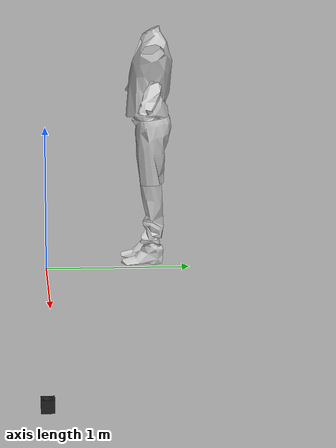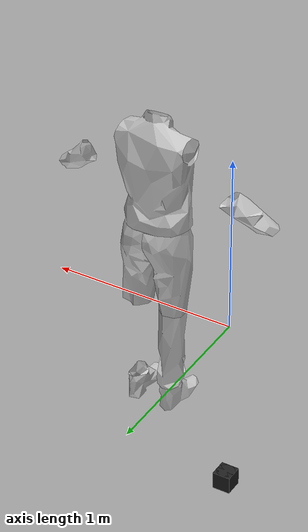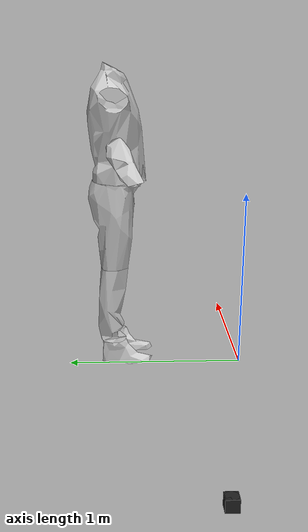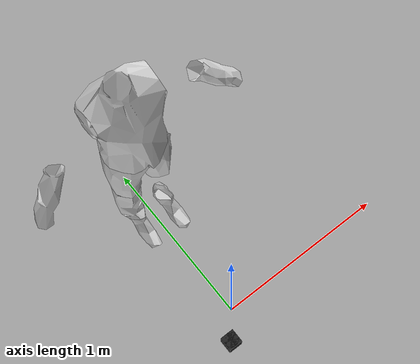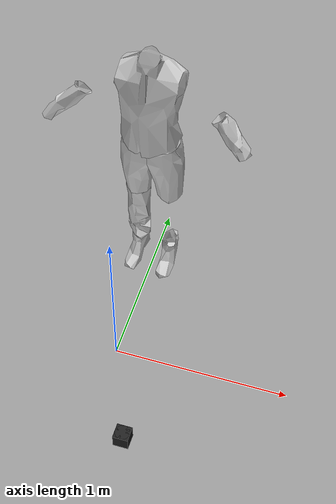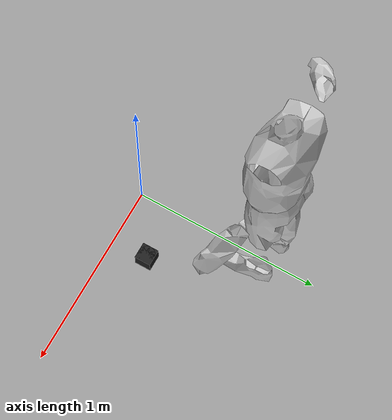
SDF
<sdf version="1.6">
 <world name="default">
  <light name="sun" type="directional">
   <pose>7.485 -12.379 17.2198 0 -0 0</pose>
   <diffuse>0.7 0.7 0.7 1</diffuse>
   <specular>0.2 0.2 0.2 1</specular>
   <direction>-0.1698 0.1 -0.3</direction>
   <attenuation>
    <range>1000</range>
    <constant>0.9</constant>
    <linear>0.01</linear>
    <quadratic>0.001</quadratic>
   </attenuation>
  </light>
  <gravity>0 0 -9.8</gravity>
  <magnetic_field>6e-06 2.3e-05 -4.2e-05</magnetic_field>
  <atmosphere type="adiabatic"/>
  <physics name="default_physics" default="0" type="ode">
   <max_step_size>0.001</max_step_size>
   <real_time_factor>1</real_time_factor>
   <real_time_update_rate>1000</real_time_update_rate>
  </physics>
  <scene><ambient>0.4 0.4 0.4 1</ambient><background>0.7 0.7 0.7 1</background><shadows>1</shadows></scene>
  <audio><device>default</device></audio>
  <spherical_coordinates>
   <surface_model>EARTH_WGS84</surface_model>
   <latitude_deg>0</latitude_deg>
   <longitude_deg>0</longitude_deg>
   <elevation>0</elevation>
   <heading_deg>0</heading_deg>
  </spherical_coordinates>
  <model name="eric_calfR_0">
   <pose>0 0.731628 0.053475 0 -0 0</pose>
   <static>1</static>
   <visible>0</visible>
   <link name="body">
    <visual name="visual"><geometry><mesh><uri>model://eric/eric_calfR.dae</uri></mesh></geometry></visual>
   </link>
  </model>
  <model name="eric_footL_0">
   <pose>0 0.731628 0.053475 0 -0 0</pose>
   <static>1</static>
   <visible>0</visible>
   <link name="body">
    <visual name="visual"><geometry><mesh><uri>model://eric/eric_footL.dae</uri></mesh></geometry></visual>
   </link>
  </model>
  <model name="eric_footR_0">
   <pose>0 0.731628 0.053475 0 -0 0</pose>
   <static>1</static>
   <visible>0</visible>
   <link name="body">
    <visual name="visual"><geometry><mesh><uri>model://eric/eric_footR.dae</uri></mesh></geometry></visual>
   </link>
  </model>
  <model name="eric_forearmL_0">
   <pose>0 0.731628 0.053475 0 -0 0</pose>
   <static>1</static>
   <visible>0</visible>
   <link name="body">
    <visual name="visual"><geometry><mesh><uri>model://eric/eric_forearmL.dae</uri></mesh></geometry></visual>
   </link>
  </model>
  <model name="eric_forearmR_0">
   <pose>0 0.731628 0.053475 0 -0 0</pose>
   <static>1</static>
   <visible>0</visible>
   <link name="body">
    <visual name="visual"><geometry><mesh><uri>model://eric/eric_forearmR.dae</uri></mesh></geometry></visual>
   </link>
  </model>
  <model name="eric_legL_0">
   <pose>0 0.731628 0.053475 0 -0 0</pose>
   <static>1</static>
   <visible>0</visible>
   <link name="body">
    <visual name="visual"><geometry><mesh><uri>model://eric/eric_legL.dae</uri></mesh></geometry></visual>
   </link>
  </model>
  <model name="eric_legR_0">
   <pose>0 0.731628 0.053475 0 -0 0</pose>
   <static>1</static>
   <visible>0</visible>
   <link name="body">
    <visual name="visual"><geometry><mesh><uri>model://eric/eric_legR.dae</uri></mesh></geometry></visual>
   </link>
  </model>
  <model name="eric_torso_0">
   <pose>0 0.731628 0.053475 0 -0 0</pose>
   <static>1</static>
   <visible>0</visible>
   <link name="body">
    <visual name="visual"><geometry><mesh><uri>model://eric/eric_torso.dae</uri></mesh></geometry></visual>
   </link>
  </model>
  <model name="camera_00">
   <link name="eye_vision_camera">
    <sensor name="camera" type="camera">
     <topic>/robot/camera</topic>
     <camera name="__default__">
      <horizontal_fov>1.57</horizontal_fov>
      <image><width>512</width><height>512</height></image>
      <clip><near>0.1</near><far>100</far></clip>
     </camera>
     <always_on>1</always_on>
     <update_rate>30.0</update_rate>
     <visualize>1</visualize>
     <plugin name="mouse_right_eye" filename="libgazebo_ros_camera.so">
      <alwaysOn>1</alwaysOn>
      <cameraName>robot</cameraName>
      <imageTopicName>camera_rgb_00</imageTopicName>
      <cameraInfoTopicName>camera_rgb_info</cameraInfoTopicName>
      <frameName>camera_link</frameName>
      <hackBaseline>0.07</hackBaseline>
      <distortionK1>0.0</distortionK1>
      <distortionK2>0.0</distortionK2>
      <distortionK3>0.0</distortionK3>
      <distortionT1>0.0</distortionT1>
      <distortionT2>0.0</distortionT2>
     </plugin>
     <update_rate>60.0</update_rate>
     <plugin name="camera_controller" filename="libgazebo_dvs_plugin.so">
      <cameraName>camera_dvs_00</cameraName>
      <robotNamespace>robot</robotNamespace>
      <eventThreshold>50</eventThreshold>
      <cameraInfoTopicName>camera_info</cameraInfoTopicName>
     </plugin>
    </sensor>
    <gravity>0</gravity>
    <inertial>
     <inertia><ixx>1</ixx><ixy>0</ixy><ixz>0</ixz><iyy>1</iyy><iyz>0</iyz><izz>1</izz></inertia>
     <mass>1</mass>
    </inertial>
   </link>
  </model>
  <model name="box_0">
   <pose>0 0 -1 0 0 0 0</pose>
   <static>1</static>
   <link name="link">
    <inertial>
     <mass>1</mass>
     <pose>0 0 -1 0 0 0 0</pose>
     <inertia><ixx>1</ixx><ixy>0</ixy><ixz>0</ixz><iyy>1</iyy><iyz>0</iyz><izz>1</izz></inertia>
    </inertial>
    <collision name="collision"><geometry><box><size>0.1 0.1 0.1</size></box></geometry></collision>
    <visual name="visual">
     <geometry><box><size>0.1 0.1 0.1</size></box></geometry>
     <material>
      <script><uri>file://media/materials/scripts/gazebo.material</uri><name>Gazebo/Black</name></script>
     </material>
    </visual>
   </link>
  </model>
  <model name="box_1">
   <pose>0 0 -1 0 0 0 0</pose>
   <static>1</static>
   <link name="link">
    <inertial>
     <mass>1</mass>
     <pose>0 0 -1 0 0 0 0</pose>
     <inertia><ixx>1</ixx><ixy>0</ixy><ixz>0</ixz><iyy>1</iyy><iyz>0</iyz><izz>1</izz></inertia>
    </inertial>
    <collision name="collision"><geometry><box><size>0.1 0.1 0.1</size></box></geometry></collision>
    <visual name="visual">
     <geometry><box><size>0.1 0.1 0.1</size></box></geometry>
     <material>
      <script><uri>file://media/materials/scripts/gazebo.material</uri><name>Gazebo/Green</name></script>
     </material>
    </visual>
   </link>
  </model>
  <model name="box_2">
   <pose>0 0 -1 0 0 0 0</pose>
   <static>1</static>
   <link name="link">
    <inertial>
     <mass>1</mass>
     <pose>0 0 -1 0 0 0 0</pose>
     <inertia><ixx>1</ixx><ixy>0</ixy><ixz>0</ixz><iyy>1</iyy><iyz>0</iyz><izz>1</izz></inertia>
    </inertial>
    <collision name="collision"><geometry><box><size>0.1 0.1 0.1</size></box></geometry></collision>
    <visual name="visual">
     <geometry><box><size>0.1 0.1 0.1</size></box></geometry>
     <material>
      <script><uri>file://media/materials/scripts/gazebo.material</uri><name>Gazebo/Grey</name></script>
     </material>
    </visual>
   </link>
  </model>
  <model name="box_3">
   <pose>0 0 -1 0 0 0 0</pose>
   <static>1</static>
   <link name="link">
    <inertial>
     <mass>1</mass>
     <pose>0 0 -1 0 0 0 0</pose>
     <inertia><ixx>1</ixx><ixy>0</ixy><ixz>0</ixz><iyy>1</iyy><iyz>0</iyz><izz>1</izz></inertia>
    </inertial>
    <collision name="collision"><geometry><box><size>0.1 0.1 0.1</size></box></geometry></collision>
    <visual name="visual">
     <geometry><box><size>0.1 0.1 0.1</size></box></geometry>
     <material>
      <script><uri>file://media/materials/scripts/gazebo.material</uri><name>Gazebo/Blue</name></script>
     </material>
    </visual>
   </link>
  </model>
  <model name="box_4">
   <pose>0 0 -1 0 0 0 0</pose>
   <static>1</static>
   <link name="link">
    <inertial>
     <mass>1</mass>
     <pose>0 0 -1 0 0 0 0</pose>
     <inertia><ixx>1</ixx><ixy>0</ixy><ixz>0</ixz><iyy>1</iyy><iyz>0</iyz><izz>1</izz></inertia>
    </inertial>
    <collision name="collision"><geometry><box><size>0.1 0.1 0.1</size></box></geometry></collision>
    <visual name="visual">
     <geometry><box><size>0.1 0.1 0.1</size></box></geometry>
     <material>
      <script><uri>file://media/materials/scripts/gazebo.material</uri><name>Gazebo/Red</name></script>
     </material>
    </visual>
   </link>
  </model>
  <model name="cylinder_0">
   <pose>0 0 -1 0 0 0 0</pose>
   <static>1</static>
   <link name="link">
    <inertial>
     <mass>1</mass>
     <pose>0 0 -1 0 0 0 0</pose>
     <inertia><ixx>1</ixx><ixy>0</ixy><ixz>0</ixz><iyy>1</iyy><iyz>0</iyz><izz>1</izz></inertia>
    </inertial>
    <collision name="collision">
     <geometry><cylinder><radius>0.05</radius><length>0.1</length></cylinder></geometry>
    </collision>
    <visual name="visual">
     <geometry><cylinder><radius>0.05</radius><length>0.1</length></cylinder></geometry>
     <material>
      <script><uri>file://media/materials/scripts/gazebo.material</uri><name>Gazebo/Black</name></script>
     </material>
    </visual>
   </link>
  </model>
  <model name="cylinder_1">
   <pose>0 0 -1 0 0 0 0</pose>
   <static>1</static>
   <link name="link">
    <inertial>
     <mass>1</mass>
     <pose>0 0 -1 0 0 0 0</pose>
     <inertia><ixx>1</ixx><ixy>0</ixy><ixz>0</ixz><iyy>1</iyy><iyz>0</iyz><izz>1</izz></inertia>
    </inertial>
    <collision name="collision">
     <geometry><cylinder><radius>0.05</radius><length>0.1</length></cylinder></geometry>
    </collision>
    <visual name="visual">
     <geometry><cylinder><radius>0.05</radius><length>0.1</length></cylinder></geometry>
     <material>
      <script><uri>file://media/materials/scripts/gazebo.material</uri><name>Gazebo/Green</name></script>
     </material>
    </visual>
   </link>
  </model>
  <model name="cylinder_2">
   <pose>0 0 -1 0 0 0 0</pose>
   <static>1</static>
   <link name="link">
    <inertial>
     <mass>1</mass>
     <pose>0 0 -1 0 0 0 0</pose>
     <inertia><ixx>1</ixx><ixy>0</ixy><ixz>0</ixz><iyy>1</iyy><iyz>0</iyz><izz>1</izz></inertia>
    </inertial>
    <collision name="collision">
     <geometry><cylinder><radius>0.05</radius><length>0.1</length></cylinder></geometry>
    </collision>
    <visual name="visual">
     <geometry><cylinder><radius>0.05</radius><length>0.1</length></cylinder></geometry>
     <material>
      <script><uri>file://media/materials/scripts/gazebo.material</uri><name>Gazebo/Grey</name></script>
     </material>
    </visual>
   </link>
  </model>
  <model name="cylinder_3">
   <pose>0 0 -1 0 0 0 0</pose>
   <static>1</static>
   <link name="link">
    <inertial>
     <mass>1</mass>
     <pose>0 0 -1 0 0 0 0</pose>
     <inertia><ixx>1</ixx><ixy>0</ixy><ixz>0</ixz><iyy>1</iyy><iyz>0</iyz><izz>1</izz></inertia>
    </inertial>
    <collision name="collision">
     <geometry><cylinder><radius>0.05</radius><length>0.1</length></cylinder></geometry>
    </collision>
    <visual name="visual">
     <geometry><cylinder><radius>0.05</radius><length>0.1</length></cylinder></geometry>
     <material>
      <script><uri>file://media/materials/scripts/gazebo.material</uri><name>Gazebo/Blue</name></script>
     </material>
    </visual>
   </link>
  </model>
  <model name="cylinder_4">
   <pose>0 0 -1 0 0 0 0</pose>
   <static>1</static>
   <link name="link">
    <inertial>
     <mass>1</mass>
     <pose>0 0 -1 0 0 0 0</pose>
     <inertia><ixx>1</ixx><ixy>0</ixy><ixz>0</ixz><iyy>1</iyy><iyz>0</iyz><izz>1</izz></inertia>
    </inertial>
    <collision name="collision">
     <geometry><cylinder><radius>0.05</radius><length>0.1</length></cylinder></geometry>
    </collision>
    <visual name="visual">
     <geometry><cylinder><radius>0.05</radius><length>0.1</length></cylinder></geometry>
     <material>
      <script><uri>file://media/materials/scripts/gazebo.material</uri><name>Gazebo/Red</name></script>
     </material>
    </visual>
   </link>
  </model>
  <model name="sphere_0">
   <pose>0 0 -1 0 0 0 0</pose>
   <static>1</static>
   <gravity>0</gravity>
   <link name="link">
    <inertial>
     <mass>1</mass>
     <pose>0 0 -1 0 0 0 0</pose>
     <inertia><ixx>1</ixx><ixy>0</ixy><ixz>0</ixz><iyy>1</iyy><iyz>0</iyz><izz>1</izz></inertia>
    </inertial>
    <collision name="collision"><geometry><sphere><radius>0.05</radius></sphere></geometry></collision>
    <visual name="visual">
     <geometry><sphere><radius>0.05</radius></sphere></geometry>
     <material>
      <script><uri>file://media/materials/scripts/gazebo.material</uri><name>Gazebo/Black</name></script>
     </material>
    </visual>
   </link>
  </model>
  <model name="sphere_1">
   <pose>0 0 -1 0 0 0 0</pose>
   <static>1</static>
   <gravity>0</gravity>
   <link name="link">
    <inertial>
     <mass>1</mass>
     <pose>0 0 -1 0 0 0 0</pose>
     <inertia><ixx>1</ixx><ixy>0</ixy><ixz>0</ixz><iyy>1</iyy><iyz>0</iyz><izz>1</izz></inertia>
    </inertial>
    <collision name="collision"><geometry><sphere><radius>0.05</radius></sphere></geometry></collision>
    <visual name="visual">
     <geometry><sphere><radius>0.05</radius></sphere></geometry>
     <material>
      <script><uri>file://media/materials/scripts/gazebo.material</uri><name>Gazebo/Green</name></script>
     </material>
    </visual>
   </link>
  </model>
  <model name="sphere_2">
   <pose>0 0 -1 0 0 0 0</pose>
   <static>1</static>
   <gravity>0</gravity>
   <link name="link">
    <inertial>
     <mass>1</mass>
     <pose>0 0 -1 0 0 0 0</pose>
     <inertia><ixx>1</ixx><ixy>0</ixy><ixz>0</ixz><iyy>1</iyy><iyz>0</iyz><izz>1</izz></inertia>
    </inertial>
    <collision name="collision"><geometry><sphere><radius>0.05</radius></sphere></geometry></collision>
    <visual name="visual">
     <geometry><sphere><radius>0.05</radius></sphere></geometry>
     <material>
      <script><uri>file://media/materials/scripts/gazebo.material</uri><name>Gazebo/Grey</name></script>
     </material>
    </visual>
   </link>
  </model>
  <model name="sphere_3">
   <pose>0 0 -1 0 0 0 0</pose>
   <static>1</static>
   <gravity>0</gravity>
   <link name="link">
    <inertial>
     <mass>1</mass>
     <pose>0 0 -1 0 0 0 0</pose>
     <inertia><ixx>1</ixx><ixy>0</ixy><ixz>0</ixz><iyy>1</iyy><iyz>0</iyz><izz>1</izz></inertia>
    </inertial>
    <collision name="collision"><geometry><sphere><radius>0.05</radius></sphere></geometry></collision>
    <visual name="visual">
     <geometry><sphere><radius>0.05</radius></sphere></geometry>
     <material>
      <script><uri>file://media/materials/scripts/gazebo.material</uri><name>Gazebo/Blue</name></script>
     </material>
    </visual>
   </link>
  </model>
  <model name="sphere_4">
   <pose>0 0 -1 0 0 0 0</pose>
   <static>1</static>
   <gravity>0</gravity>
   <link name="link">
    <inertial>
     <mass>1</mass>
     <pose>0 0 -1 0 0 0 0</pose>
     <inertia><ixx>1</ixx><ixy>0</ixy><ixz>0</ixz><iyy>1</iyy><iyz>0</iyz><izz>1</izz></inertia>
    </inertial>
    <collision name="collision"><geometry><sphere><radius>0.05</radius></sphere></geometry></collision>
    <visual name="visual">
     <geometry><sphere><radius>0.05</radius></sphere></geometry>
     <material>
      <script><uri>file://media/materials/scripts/gazebo.material</uri><name>Gazebo/Red</name></script>
     </material>
    </visual>
   </link>
  </model>
 </world>
</sdf>
